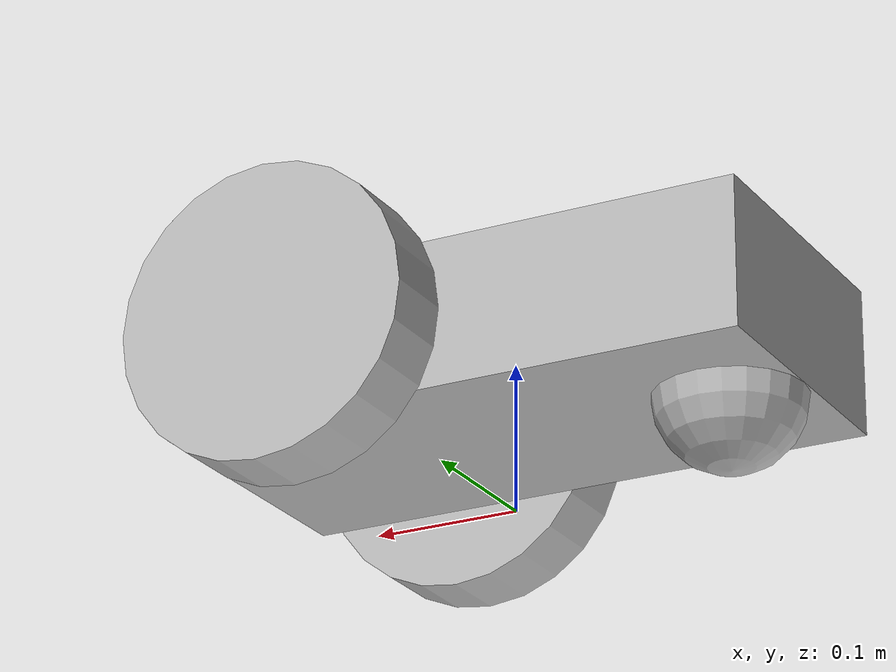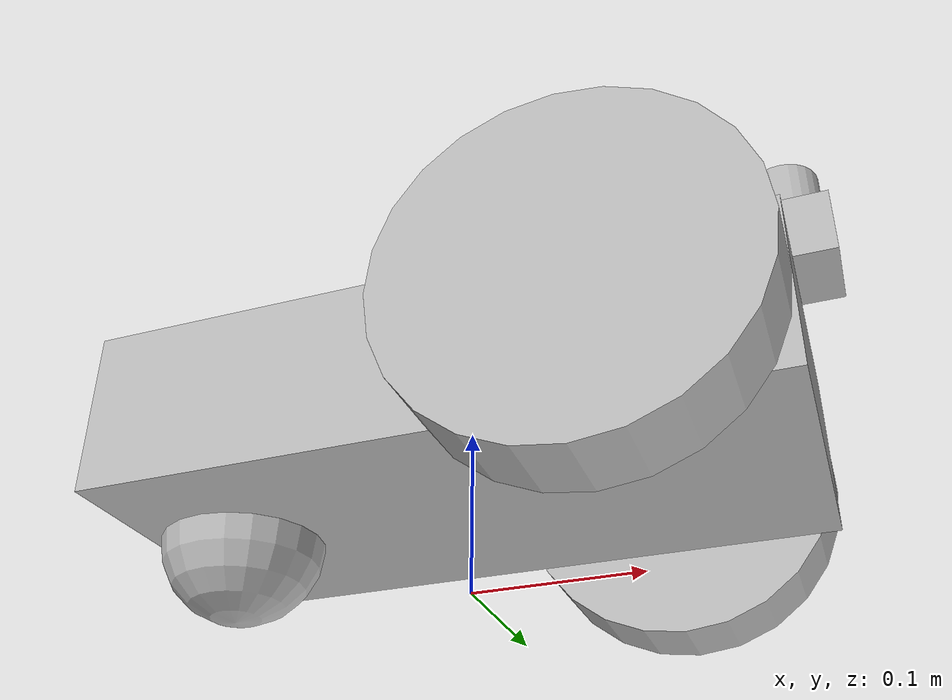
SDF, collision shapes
<?xml version='1.0'?>
<sdf version='1.6'>
  <model name='my_robot'>
    <link name='chassis'>
      <pose frame=''>0 0 0.1 0 -0 0</pose>
      <inertial>
        <inertia>
          <ixx>1</ixx>
          <ixy>0</ixy>
          <ixz>0</ixz>
          <iyy>1</iyy>
          <iyz>0</iyz>
          <izz>1</izz>
        </inertia>
        <mass>1</mass>
      </inertial>
      <self_collide>0</self_collide>
      <kinematic>0</kinematic>
      <visual name='visual'>
        <pose frame=''>0 0 0.05 0 -0 0</pose>
        <geometry>
          <mesh>
            <uri>model://pioneer2dx/meshes/chassis.dae</uri>
            <scale>1 1 1</scale>
          </mesh>
        </geometry>
        <cast_shadows>1</cast_shadows>
        <transparency>0</transparency>
      </visual>
      <visual name='caster_visual'>
        <pose frame=''>-0.15 0 -0.05 0 -0 0</pose>
        <geometry>
          <sphere>
            <radius>0.05</radius>
          </sphere>
        </geometry>
        <cast_shadows>1</cast_shadows>
        <transparency>0</transparency>
      </visual>
      <collision name='collision'>
        <laser_retro>0</laser_retro>
        <max_contacts>10</max_contacts>
        <pose frame=''>0 0 0 0 -0 0</pose>
        <geometry>
          <box>
            <size>0.4 0.2 0.1</size>
          </box>
        </geometry>
        <surface>
          <friction>
            <ode>
              <mu>1</mu>
              <mu2>1</mu2>
              <fdir1>0 0 0</fdir1>
              <slip1>0</slip1>
              <slip2>0</slip2>
            </ode>
            <torsional>
              <coefficient>1</coefficient>
              <patch_radius>0</patch_radius>
              <surface_radius>0</surface_radius>
              <use_patch_radius>1</use_patch_radius>
              <ode>
                <slip>0</slip>
              </ode>
            </torsional>
          </friction>
          <bounce>
            <restitution_coefficient>0</restitution_coefficient>
            <threshold>1e+06</threshold>
          </bounce>
          <contact>
            <collide_without_contact>0</collide_without_contact>
            <collide_without_contact_bitmask>1</collide_without_contact_bitmask>
            <collide_bitmask>1</collide_bitmask>
            <ode>
              <soft_cfm>0</soft_cfm>
              <soft_erp>0.2</soft_erp>
              <kp>1e+13</kp>
              <kd>1</kd>
              <max_vel>0.01</max_vel>
              <min_depth>0</min_depth>
            </ode>
            <bullet>
              <split_impulse>1</split_impulse>
              <split_impulse_penetration_threshold>-0.01</split_impulse_penetration_threshold>
              <soft_cfm>0</soft_cfm>
              <soft_erp>0.2</soft_erp>
              <kp>1e+13</kp>
              <kd>1</kd>
            </bullet>
          </contact>
        </surface>
      </collision>
      <collision name='caster_collision'>
        <laser_retro>0</laser_retro>
        <max_contacts>10</max_contacts>
        <pose frame=''>-0.15 0 -0.05 0 -0 0</pose>
        <geometry>
          <sphere>
            <radius>0.05</radius>
          </sphere>
        </geometry>
        <surface>
          <friction>
            <ode>
              <mu>0</mu>
              <mu2>0</mu2>
              <fdir1>0 0 0</fdir1>
              <slip1>1</slip1>
              <slip2>1</slip2>
            </ode>
            <torsional>
              <coefficient>1</coefficient>
              <patch_radius>0</patch_radius>
              <surface_radius>0</surface_radius>
              <use_patch_radius>1</use_patch_radius>
              <ode>
                <slip>0</slip>
              </ode>
            </torsional>
          </friction>
          <bounce>
            <restitution_coefficient>0</restitution_coefficient>
            <threshold>1e+06</threshold>
          </bounce>
          <contact>
            <collide_without_contact>0</collide_without_contact>
            <collide_without_contact_bitmask>1</collide_without_contact_bitmask>
            <collide_bitmask>1</collide_bitmask>
            <ode>
              <soft_cfm>0</soft_cfm>
              <soft_erp>0.2</soft_erp>
              <kp>1e+13</kp>
              <kd>1</kd>
              <max_vel>0.01</max_vel>
              <min_depth>0</min_depth>
            </ode>
            <bullet>
              <split_impulse>1</split_impulse>
              <split_impulse_penetration_threshold>-0.01</split_impulse_penetration_threshold>
              <soft_cfm>0</soft_cfm>
              <soft_erp>0.2</soft_erp>
              <kp>1e+13</kp>
              <kd>1</kd>
            </bullet>
          </contact>
        </surface>
      </collision>
    </link>
    <link name='hokuyo::link'>
      <pose frame=''>0.2 -0 0.2 0 -0 0</pose>
      <inertial>
        <mass>0.1</mass>
        <inertia>
          <ixx>1</ixx>
          <ixy>0</ixy>
          <ixz>0</ixz>
          <iyy>1</iyy>
          <iyz>0</iyz>
          <izz>1</izz>
        </inertia>
        <pose frame=''>0 0 0 0 -0 0</pose>
      </inertial>
      <self_collide>0</self_collide>
      <kinematic>0</kinematic>
      <sensor name='laser' type='ray'>
        <pose frame=''>0.01 0 0.0175 0 -0 0</pose>
        <ray>
          <scan>
            <horizontal>
              <samples>640</samples>
              <resolution>1</resolution>
              <min_angle>-2.26889</min_angle>
              <max_angle>2.2689</max_angle>
            </horizontal>
            <vertical>
              <samples>1</samples>
              <min_angle>0</min_angle>
              <max_angle>0</max_angle>
            </vertical>
          </scan>
          <range>
            <min>0.08</min>
            <max>10</max>
            <resolution>0.01</resolution>
          </range>
        </ray>
        <plugin name='laser' filename='libRayPlugin.so'/>
        <always_on>1</always_on>
        <update_rate>30</update_rate>
        <visualize>1</visualize>
      </sensor>
      <gravity>1</gravity>
      <visual name='visual'>
        <geometry>
          <mesh>
            <uri>model://hokuyo/meshes/hokuyo.dae</uri>
            <scale>1 1 1</scale>
          </mesh>
        </geometry>
        <pose frame=''>0 0 0 0 -0 0</pose>
        <cast_shadows>1</cast_shadows>
        <transparency>0</transparency>
      </visual>
      <collision name='collision-base'>
        <laser_retro>0</laser_retro>
        <max_contacts>10</max_contacts>
        <pose frame=''>0 0 -0.0145 0 -0 0</pose>
        <geometry>
          <box>
            <size>0.05 0.05 0.041</size>
          </box>
        </geometry>
        <surface>
          <friction>
            <ode>
              <mu>1</mu>
              <mu2>1</mu2>
              <fdir1>0 0 0</fdir1>
              <slip1>0</slip1>
              <slip2>0</slip2>
            </ode>
            <torsional>
              <coefficient>1</coefficient>
              <patch_radius>0</patch_radius>
              <surface_radius>0</surface_radius>
              <use_patch_radius>1</use_patch_radius>
              <ode>
                <slip>0</slip>
              </ode>
            </torsional>
          </friction>
          <bounce>
            <restitution_coefficient>0</restitution_coefficient>
            <threshold>1e+06</threshold>
          </bounce>
          <contact>
            <collide_without_contact>0</collide_without_contact>
            <collide_without_contact_bitmask>1</collide_without_contact_bitmask>
            <collide_bitmask>1</collide_bitmask>
            <ode>
              <soft_cfm>0</soft_cfm>
              <soft_erp>0.2</soft_erp>
              <kp>1e+13</kp>
              <kd>1</kd>
              <max_vel>0.01</max_vel>
              <min_depth>0</min_depth>
            </ode>
            <bullet>
              <split_impulse>1</split_impulse>
              <split_impulse_penetration_threshold>-0.01</split_impulse_penetration_threshold>
              <soft_cfm>0</soft_cfm>
              <soft_erp>0.2</soft_erp>
              <kp>1e+13</kp>
              <kd>1</kd>
            </bullet>
          </contact>
        </surface>
      </collision>
      <collision name='collision-top'>
        <laser_retro>0</laser_retro>
        <max_contacts>10</max_contacts>
        <pose frame=''>0 0 0.0205 0 -0 0</pose>
        <geometry>
          <cylinder>
            <radius>0.021</radius>
            <length>0.029</length>
          </cylinder>
        </geometry>
        <surface>
          <friction>
            <ode>
              <mu>1</mu>
              <mu2>1</mu2>
              <fdir1>0 0 0</fdir1>
              <slip1>0</slip1>
              <slip2>0</slip2>
            </ode>
            <torsional>
              <coefficient>1</coefficient>
              <patch_radius>0</patch_radius>
              <surface_radius>0</surface_radius>
              <use_patch_radius>1</use_patch_radius>
              <ode>
                <slip>0</slip>
              </ode>
            </torsional>
          </friction>
          <bounce>
            <restitution_coefficient>0</restitution_coefficient>
            <threshold>1e+06</threshold>
          </bounce>
          <contact>
            <collide_without_contact>0</collide_without_contact>
            <collide_without_contact_bitmask>1</collide_without_contact_bitmask>
            <collide_bitmask>1</collide_bitmask>
            <ode>
              <soft_cfm>0</soft_cfm>
              <soft_erp>0.2</soft_erp>
              <kp>1e+13</kp>
              <kd>1</kd>
              <max_vel>0.01</max_vel>
              <min_depth>0</min_depth>
            </ode>
            <bullet>
              <split_impulse>1</split_impulse>
              <split_impulse_penetration_threshold>-0.01</split_impulse_penetration_threshold>
              <soft_cfm>0</soft_cfm>
              <soft_erp>0.2</soft_erp>
              <kp>1e+13</kp>
              <kd>1</kd>
            </bullet>
          </contact>
        </surface>
      </collision>
    </link>
    <link name='left_wheel'>
      <pose frame=''>0.1 0.13 0.1 -0.000689 1.5707 1.57001</pose>
      <inertial>
        <inertia>
          <ixx>1</ixx>
          <ixy>0</ixy>
          <ixz>0</ixz>
          <iyy>1</iyy>
          <iyz>0</iyz>
          <izz>1</izz>
        </inertia>
        <mass>1</mass>
      </inertial>
      <self_collide>0</self_collide>
      <kinematic>0</kinematic>
      <visual name='visual'>
        <geometry>
          <cylinder>
            <radius>0.1</radius>
            <length>0.05</length>
          </cylinder>
        </geometry>
        <pose frame=''>0 0 0 0 -0 0</pose>
        <cast_shadows>1</cast_shadows>
        <transparency>0</transparency>
      </visual>
      <collision name='collision'>
        <laser_retro>0</laser_retro>
        <max_contacts>10</max_contacts>
        <pose frame=''>0 0 0 0 -0 0</pose>
        <geometry>
          <cylinder>
            <radius>0.1</radius>
            <length>0.05</length>
          </cylinder>
        </geometry>
        <surface>
          <friction>
            <ode>
              <mu>1</mu>
              <mu2>1</mu2>
              <fdir1>0 0 0</fdir1>
              <slip1>0</slip1>
              <slip2>0</slip2>
            </ode>
            <torsional>
              <coefficient>1</coefficient>
              <patch_radius>0</patch_radius>
              <surface_radius>0</surface_radius>
              <use_patch_radius>1</use_patch_radius>
              <ode>
                <slip>0</slip>
              </ode>
            </torsional>
          </friction>
          <bounce>
            <restitution_coefficient>0</restitution_coefficient>
            <threshold>1e+06</threshold>
          </bounce>
          <contact>
            <collide_without_contact>0</collide_without_contact>
            <collide_without_contact_bitmask>1</collide_without_contact_bitmask>
            <collide_bitmask>1</collide_bitmask>
            <ode>
              <soft_cfm>0</soft_cfm>
              <soft_erp>0.2</soft_erp>
              <kp>1e+13</kp>
              <kd>1</kd>
              <max_vel>0.01</max_vel>
              <min_depth>0</min_depth>
            </ode>
            <bullet>
              <split_impulse>1</split_impulse>
              <split_impulse_penetration_threshold>-0.01</split_impulse_penetration_threshold>
              <soft_cfm>0</soft_cfm>
              <soft_erp>0.2</soft_erp>
              <kp>1e+13</kp>
              <kd>1</kd>
            </bullet>
          </contact>
        </surface>
      </collision>
    </link>
    <link name='right_wheel'>
      <pose frame=''>0.1 -0.13 0.1 -0.000689 1.5707 1.57001</pose>
      <inertial>
        <inertia>
          <ixx>1</ixx>
          <ixy>0</ixy>
          <ixz>0</ixz>
          <iyy>1</iyy>
          <iyz>0</iyz>
          <izz>1</izz>
        </inertia>
        <mass>1</mass>
      </inertial>
      <self_collide>0</self_collide>
      <kinematic>0</kinematic>
      <visual name='visual'>
        <geometry>
          <cylinder>
            <radius>0.1</radius>
            <length>0.05</length>
          </cylinder>
        </geometry>
        <pose frame=''>0 0 0 0 -0 0</pose>
        <cast_shadows>1</cast_shadows>
        <transparency>0</transparency>
      </visual>
      <collision name='collision'>
        <laser_retro>0</laser_retro>
        <max_contacts>10</max_contacts>
        <pose frame=''>0 0 0 0 -0 0</pose>
        <geometry>
          <cylinder>
            <radius>0.1</radius>
            <length>0.05</length>
          </cylinder>
        </geometry>
        <surface>
          <friction>
            <ode>
              <mu>1</mu>
              <mu2>1</mu2>
              <fdir1>0 0 0</fdir1>
              <slip1>0</slip1>
              <slip2>0</slip2>
            </ode>
            <torsional>
              <coefficient>1</coefficient>
              <patch_radius>0</patch_radius>
              <surface_radius>0</surface_radius>
              <use_patch_radius>1</use_patch_radius>
              <ode>
                <slip>0</slip>
              </ode>
            </torsional>
          </friction>
          <bounce>
            <restitution_coefficient>0</restitution_coefficient>
            <threshold>1e+06</threshold>
          </bounce>
          <contact>
            <collide_without_contact>0</collide_without_contact>
            <collide_without_contact_bitmask>1</collide_without_contact_bitmask>
            <collide_bitmask>1</collide_bitmask>
            <ode>
              <soft_cfm>0</soft_cfm>
              <soft_erp>0.2</soft_erp>
              <kp>1e+13</kp>
              <kd>1</kd>
              <max_vel>0.01</max_vel>
              <min_depth>0</min_depth>
            </ode>
            <bullet>
              <split_impulse>1</split_impulse>
              <split_impulse_penetration_threshold>-0.01</split_impulse_penetration_threshold>
              <soft_cfm>0</soft_cfm>
              <soft_erp>0.2</soft_erp>
              <kp>1e+13</kp>
              <kd>1</kd>
            </bullet>
          </contact>
        </surface>
      </collision>
    </link>
    <joint name='hokuyo_joint' type='revolute'>
      <parent>chassis</parent>
      <child>hokuyo::link</child>
      <pose frame=''>0 0 0 0 -0 0</pose>
      <axis>
        <xyz>0 0 1</xyz>
        <use_parent_model_frame>1</use_parent_model_frame>
        <limit>
          <lower>0</lower>
          <upper>0</upper>
          <effort>-1</effort>
          <velocity>-1</velocity>
        </limit>
        <dynamics>
          <spring_reference>0</spring_reference>
          <spring_stiffness>0</spring_stiffness>
          <damping>0</damping>
          <friction>0</friction>
        </dynamics>
      </axis>
      <physics>
        <ode>
          <limit>
            <cfm>0</cfm>
            <erp>0.2</erp>
          </limit>
          <suspension>
            <cfm>0</cfm>
            <erp>0.2</erp>
          </suspension>
        </ode>
      </physics>
    </joint>
    <joint name='left_wheel_hinge' type='revolute'>
      <parent>chassis</parent>
      <child>left_wheel</child>
      <pose frame=''>0 0 -0.03 0 -0 0</pose>
      <axis>
        <xyz>0 1 0</xyz>
        <use_parent_model_frame>1</use_parent_model_frame>
        <limit>
          <lower>-1e+16</lower>
          <upper>1e+16</upper>
          <effort>-1</effort>
          <velocity>-1</velocity>
        </limit>
        <dynamics>
          <spring_reference>0</spring_reference>
          <spring_stiffness>0</spring_stiffness>
          <damping>0</damping>
          <friction>0</friction>
        </dynamics>
      </axis>
      <physics>
        <ode>
          <limit>
            <cfm>0</cfm>
            <erp>0.2</erp>
          </limit>
          <suspension>
            <cfm>0</cfm>
            <erp>0.2</erp>
          </suspension>
        </ode>
      </physics>
    </joint>
    <joint name='right_wheel_hinge' type='revolute'>
      <parent>chassis</parent>
      <child>right_wheel</child>
      <pose frame=''>0 0 0.03 0 -0 0</pose>
      <axis>
        <xyz>0 1 0</xyz>
        <use_parent_model_frame>1</use_parent_model_frame>
        <limit>
          <lower>-1e+16</lower>
          <upper>1e+16</upper>
          <effort>-1</effort>
          <velocity>-1</velocity>
        </limit>
        <dynamics>
          <spring_reference>0</spring_reference>
          <spring_stiffness>0</spring_stiffness>
          <damping>0</damping>
          <friction>0</friction>
        </dynamics>
      </axis>
      <physics>
        <ode>
          <limit>
            <cfm>0</cfm>
            <erp>0.2</erp>
          </limit>
          <suspension>
            <cfm>0</cfm>
            <erp>0.2</erp>
          </suspension>
        </ode>
      </physics>
    </joint>
    <static>0</static>
    <allow_auto_disable>1</allow_auto_disable>
    <plugin name='hokuyo_node' filename='libgazebo_ros_laser.so'>
      <topicName>/laser/scan</topicName>
      <frameName>base_laser_link</frameName>
    </plugin>

<plugin name="differential_drive_controller" filename="libgazebo_ros_diff_drive.so">
 <alwaysOn>true</alwaysOn>
 <updateRate>20</updateRate>
 <leftJoint>left_wheel_hinge</leftJoint>
 <rightJoint>right_wheel_hinge</rightJoint>
 <wheelSeparation>0.4</wheelSeparation>
 <wheelDiameter>0.1</wheelDiameter>
 <torque>20</torque>
 <commandTopic>cmd_vel</commandTopic>
 <odometryTopic>odom</odometryTopic>
 <odometryFrame>odom</odometryFrame>
 <robotBaseFrame>base_footprint</robotBaseFrame>
 </plugin>

  </model>
</sdf>
